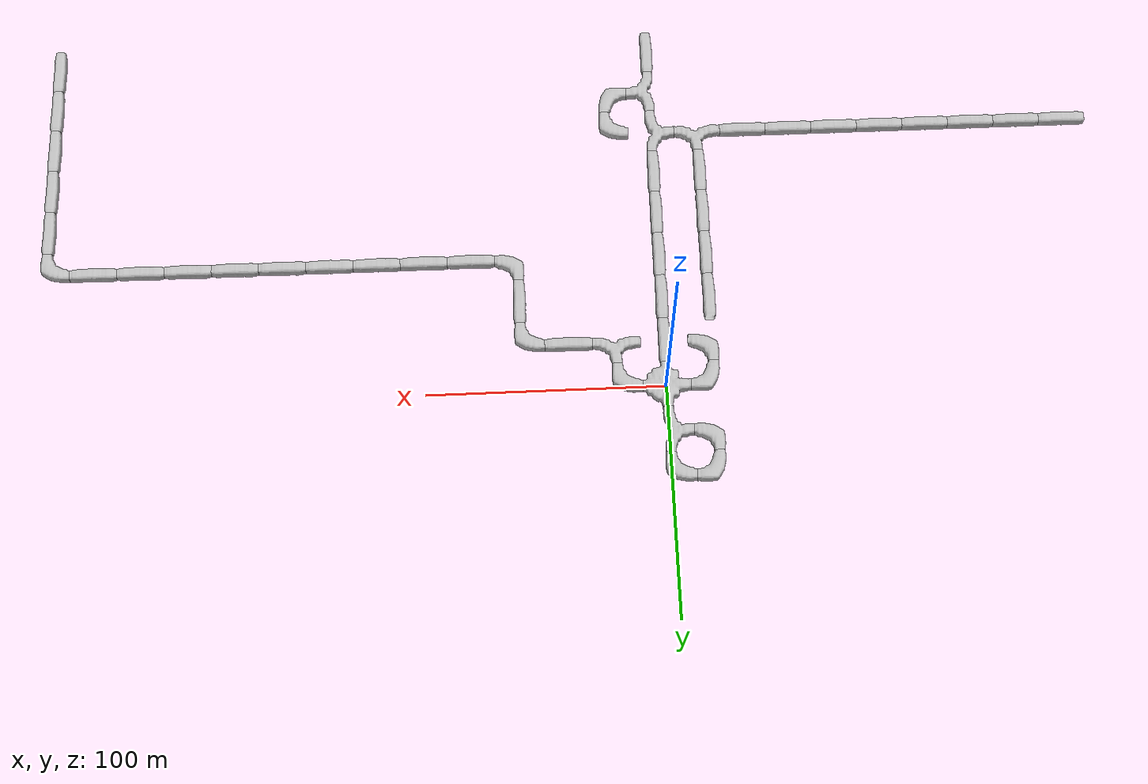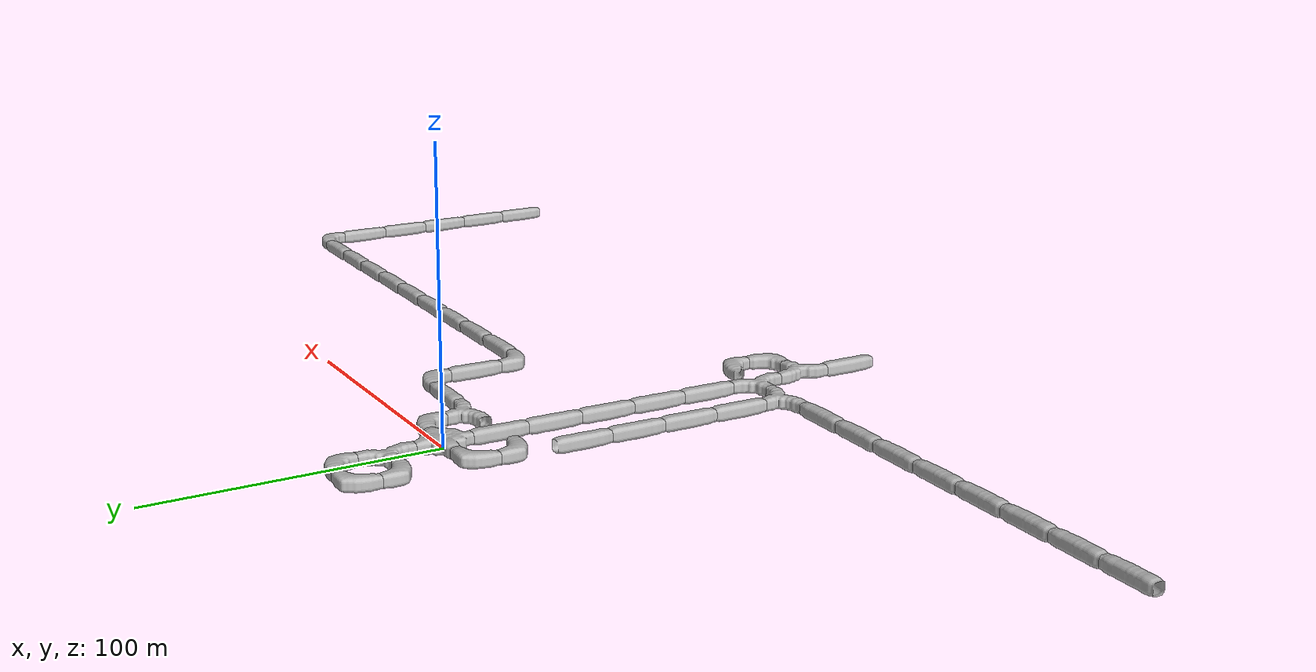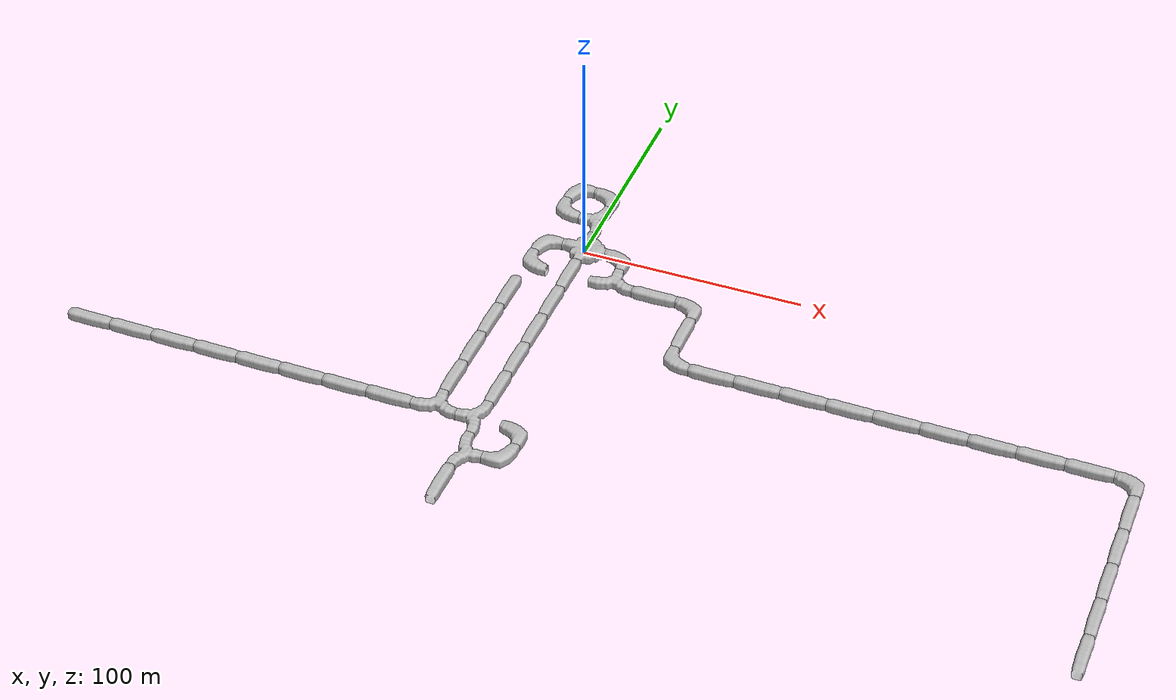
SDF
<sdf version="1.6">
 <world name="cave_8000_32">
  <include>
   <static>true</static>
   <name>cave_0_0</name>
   <pose>0 0 0 0 0 -1.5707963267948966</pose>
   <uri>model://cave_4way_20m</uri>
  </include>
  <include>
   <static>true</static>
   <name>cave_1_0</name>
   <pose>20 0 0 0 0 3.141592653589793</pose>
   <uri>model://cave_L_20m</uri>
  </include>
  <include>
   <static>true</static>
   <name>cave_1_-1</name>
   <pose>20 -20 0 0 0 0.0</pose>
   <uri>model://cave_3way_20m</uri>
  </include>
  <include>
   <static>true</static>
   <name>cave_2_-1</name>
   <pose>40 -20 0 0 0 1.5707963267948966</pose>
   <uri>model://cave_straight_20m</uri>
  </include>
  <include>
   <static>true</static>
   <name>cave_3_-1</name>
   <pose>60 -20 0 0 0 3.141592653589793</pose>
   <uri>model://cave_L_20m</uri>
  </include>
  <include>
   <static>true</static>
   <name>cave_3_-2</name>
   <pose>60 -40 0 0 0 0.0</pose>
   <uri>model://cave_straight_20m</uri>
  </include>
  <include>
   <static>true</static>
   <name>cave_3_-3</name>
   <pose>60 -60 0 0 0 0.0</pose>
   <uri>model://cave_L_20m</uri>
  </include>
  <include>
   <static>true</static>
   <name>cave_4_-3</name>
   <pose>80 -60 0 0 0 1.5707963267948966</pose>
   <uri>model://cave_straight_20m</uri>
  </include>
  <include>
   <static>true</static>
   <name>cave_5_-3</name>
   <pose>100 -60 0 0 0 1.5707963267948966</pose>
   <uri>model://cave_straight_20m</uri>
  </include>
  <include>
   <static>true</static>
   <name>cave_6_-3</name>
   <pose>120 -60 0 0 0 1.5707963267948966</pose>
   <uri>model://cave_straight_20m</uri>
  </include>
  <include>
   <static>true</static>
   <name>cave_7_-3</name>
   <pose>140 -60 0 0 0 1.5707963267948966</pose>
   <uri>model://cave_straight_20m</uri>
  </include>
  <include>
   <static>true</static>
   <name>cave_8_-3</name>
   <pose>160 -60 0 0 0 1.5707963267948966</pose>
   <uri>model://cave_straight_20m</uri>
  </include>
  <include>
   <static>true</static>
   <name>cave_9_-3</name>
   <pose>180 -60 0 0 0 1.5707963267948966</pose>
   <uri>model://cave_straight_20m</uri>
  </include>
  <include>
   <static>true</static>
   <name>cave_10_-3</name>
   <pose>200 -60 0 0 0 1.5707963267948966</pose>
   <uri>model://cave_straight_20m</uri>
  </include>
  <include>
   <static>true</static>
   <name>cave_11_-3</name>
   <pose>220 -60 0 0 0 1.5707963267948966</pose>
   <uri>model://cave_straight_20m</uri>
  </include>
  <include>
   <static>true</static>
   <name>cave_12_-3</name>
   <pose>240 -60 0 0 0 1.5707963267948966</pose>
   <uri>model://cave_straight_20m</uri>
  </include>
  <include>
   <static>true</static>
   <name>cave_13_-3</name>
   <pose>260 -60 0 0 0 3.141592653589793</pose>
   <uri>model://cave_L_20m</uri>
  </include>
  <include>
   <static>true</static>
   <name>cave_13_-4</name>
   <pose>260 -80 0 0 0 0.0</pose>
   <uri>model://cave_straight_20m</uri>
  </include>
  <include>
   <static>true</static>
   <name>cave_13_-5</name>
   <pose>260 -100 0 0 0 0.0</pose>
   <uri>model://cave_straight_20m</uri>
  </include>
  <include>
   <static>true</static>
   <name>cave_13_-6</name>
   <pose>260 -120 0 0 0 0.0</pose>
   <uri>model://cave_straight_20m</uri>
  </include>
  <include>
   <static>true</static>
   <name>cave_13_-7</name>
   <pose>260 -140 0 0 0 0.0</pose>
   <uri>model://cave_straight_20m</uri>
  </include>
  <include>
   <static>true</static>
   <name>cave_13_-8</name>
   <pose>260 -160 0 0 0 0.0</pose>
   <uri>model://cave_straight_20m</uri>
  </include>
  <include>
   <static>true</static>
   <name>cave_0_-1</name>
   <pose>0 -20 0 0 0 0.0</pose>
   <uri>model://cave_straight_20m</uri>
  </include>
  <include>
   <static>true</static>
   <name>cave_0_-2</name>
   <pose>0 -40 0 0 0 0.0</pose>
   <uri>model://cave_straight_20m</uri>
  </include>
  <include>
   <static>true</static>
   <name>cave_0_-3</name>
   <pose>0 -60 0 0 0 0.0</pose>
   <uri>model://cave_straight_20m</uri>
  </include>
  <include>
   <static>true</static>
   <name>cave_0_-4</name>
   <pose>0 -80 0 0 0 0.0</pose>
   <uri>model://cave_straight_20m</uri>
  </include>
  <include>
   <static>true</static>
   <name>cave_0_-5</name>
   <pose>0 -100 0 0 0 0.0</pose>
   <uri>model://cave_straight_20m</uri>
  </include>
  <include>
   <static>true</static>
   <name>cave_0_-6</name>
   <pose>0 -120 0 0 0 1.5707963267948966</pose>
   <uri>model://cave_3way_20m</uri>
  </include>
  <include>
   <static>true</static>
   <name>cave_0_-7</name>
   <pose>0 -140 0 0 0 -1.5707963267948966</pose>
   <uri>model://cave_3way_20m</uri>
  </include>
  <include>
   <static>true</static>
   <name>cave_1_-7</name>
   <pose>20 -140 0 0 0 1.5707963267948966</pose>
   <uri>model://cave_L_20m</uri>
  </include>
  <include>
   <static>true</static>
   <name>cave_1_-6</name>
   <pose>20 -120 0 0 0 3.141592653589793</pose>
   <uri>model://cave_L_20m</uri>
  </include>
  <include>
   <static>true</static>
   <name>cave_0_-8</name>
   <pose>0 -160 0 0 0 0.0</pose>
   <uri>model://cave_straight_20m</uri>
  </include>
  <include>
   <static>true</static>
   <name>cave_-1_-6</name>
   <pose>-20 -120 0 0 0 0.0</pose>
   <uri>model://cave_3way_20m</uri>
  </include>
  <include>
   <static>true</static>
   <name>cave_-2_-6</name>
   <pose>-40 -120 0 0 0 1.5707963267948966</pose>
   <uri>model://cave_straight_20m</uri>
  </include>
  <include>
   <static>true</static>
   <name>cave_-3_-6</name>
   <pose>-60 -120 0 0 0 1.5707963267948966</pose>
   <uri>model://cave_straight_20m</uri>
  </include>
  <include>
   <static>true</static>
   <name>cave_-4_-6</name>
   <pose>-80 -120 0 0 0 1.5707963267948966</pose>
   <uri>model://cave_straight_20m</uri>
  </include>
  <include>
   <static>true</static>
   <name>cave_-5_-6</name>
   <pose>-100 -120 0 0 0 1.5707963267948966</pose>
   <uri>model://cave_straight_20m</uri>
  </include>
  <include>
   <static>true</static>
   <name>cave_-6_-6</name>
   <pose>-120 -120 0 0 0 1.5707963267948966</pose>
   <uri>model://cave_straight_20m</uri>
  </include>
  <include>
   <static>true</static>
   <name>cave_-7_-6</name>
   <pose>-140 -120 0 0 0 1.5707963267948966</pose>
   <uri>model://cave_straight_20m</uri>
  </include>
  <include>
   <static>true</static>
   <name>cave_-8_-6</name>
   <pose>-160 -120 0 0 0 1.5707963267948966</pose>
   <uri>model://cave_straight_20m</uri>
  </include>
  <include>
   <static>true</static>
   <name>cave_-9_-6</name>
   <pose>-180 -120 0 0 0 1.5707963267948966</pose>
   <uri>model://cave_straight_20m</uri>
  </include>
  <include>
   <static>true</static>
   <name>cave_-1_-5</name>
   <pose>-20 -100 0 0 0 0.0</pose>
   <uri>model://cave_straight_20m</uri>
  </include>
  <include>
   <static>true</static>
   <name>cave_-1_-4</name>
   <pose>-20 -80 0 0 0 0.0</pose>
   <uri>model://cave_straight_20m</uri>
  </include>
  <include>
   <static>true</static>
   <name>cave_-1_-3</name>
   <pose>-20 -60 0 0 0 0.0</pose>
   <uri>model://cave_straight_20m</uri>
  </include>
  <include>
   <static>true</static>
   <name>cave_-1_-2</name>
   <pose>-20 -40 0 0 0 0.0</pose>
   <uri>model://cave_straight_20m</uri>
  </include>
  <include>
   <static>true</static>
   <name>cave_-1_0</name>
   <pose>-20 0 0 0 0 -1.5707963267948966</pose>
   <uri>model://cave_L_20m</uri>
  </include>
  <include>
   <static>true</static>
   <name>cave_-1_-1</name>
   <pose>-20 -20 0 0 0 0.0</pose>
   <uri>model://cave_L_20m</uri>
  </include>
  <include>
   <static>true</static>
   <name>cave_0_1</name>
   <pose>0 20 0 0 0 1.5707963267948966</pose>
   <uri>model://cave_3way_20m</uri>
  </include>
  <include>
   <static>true</static>
   <name>cave_-1_1</name>
   <pose>-20 20 0 0 0 0.0</pose>
   <uri>model://cave_L_20m</uri>
  </include>
  <include>
   <static>true</static>
   <name>cave_-1_2</name>
   <pose>-20 40 0 0 0 -1.5707963267948966</pose>
   <uri>model://cave_L_20m</uri>
  </include>
  <include>
   <static>true</static>
   <name>cave_0_2</name>
   <pose>0 40 0 0 0 3.141592653589793</pose>
   <uri>model://cave_L_20m</uri>
  </include>
 </world>
</sdf>
